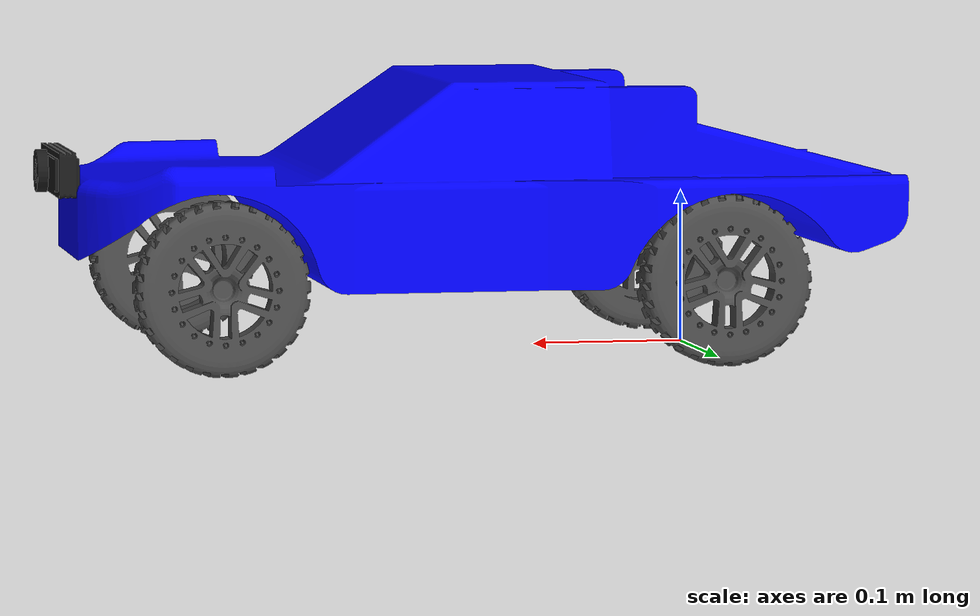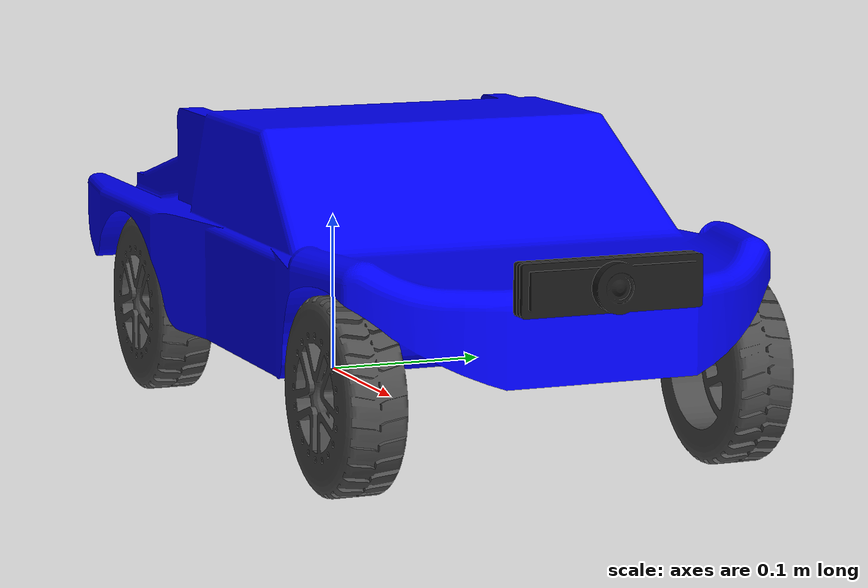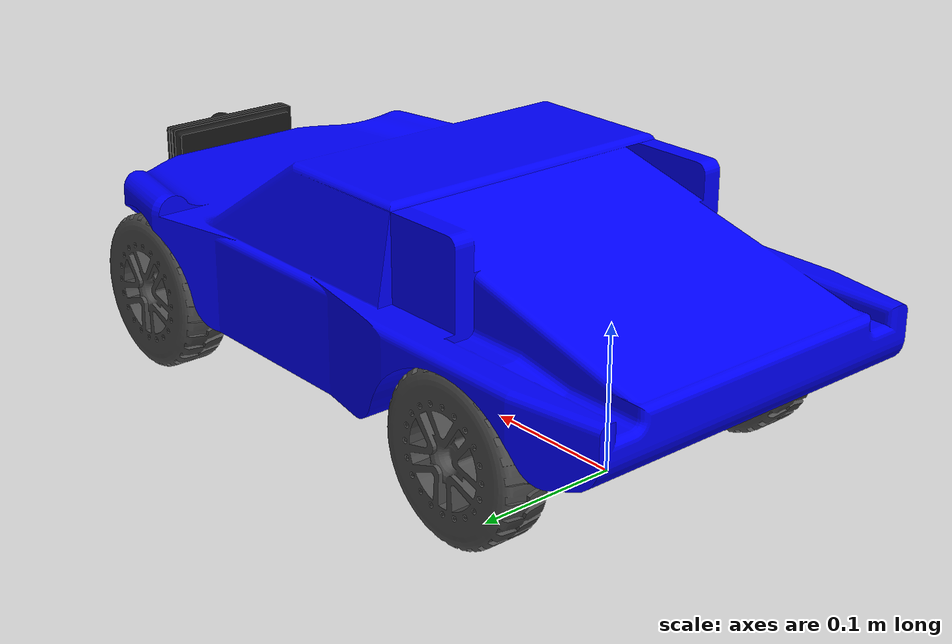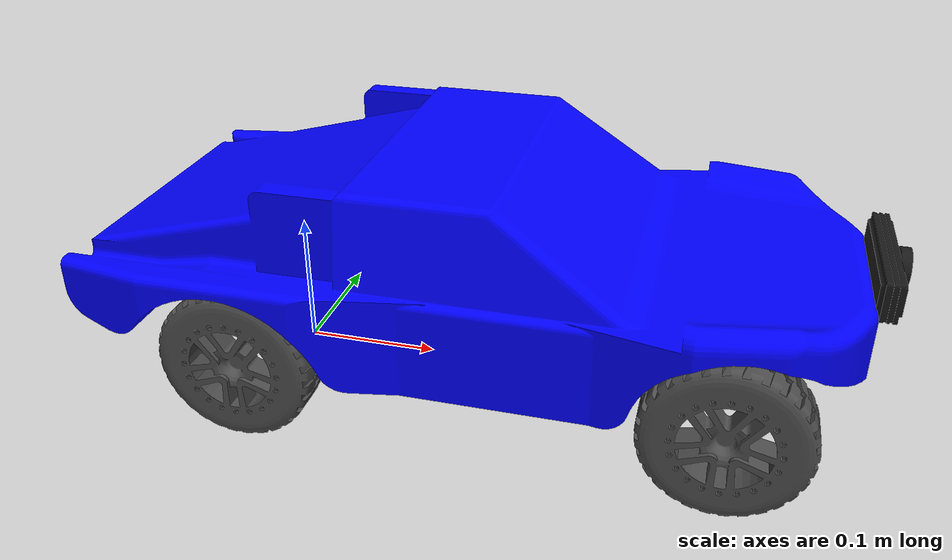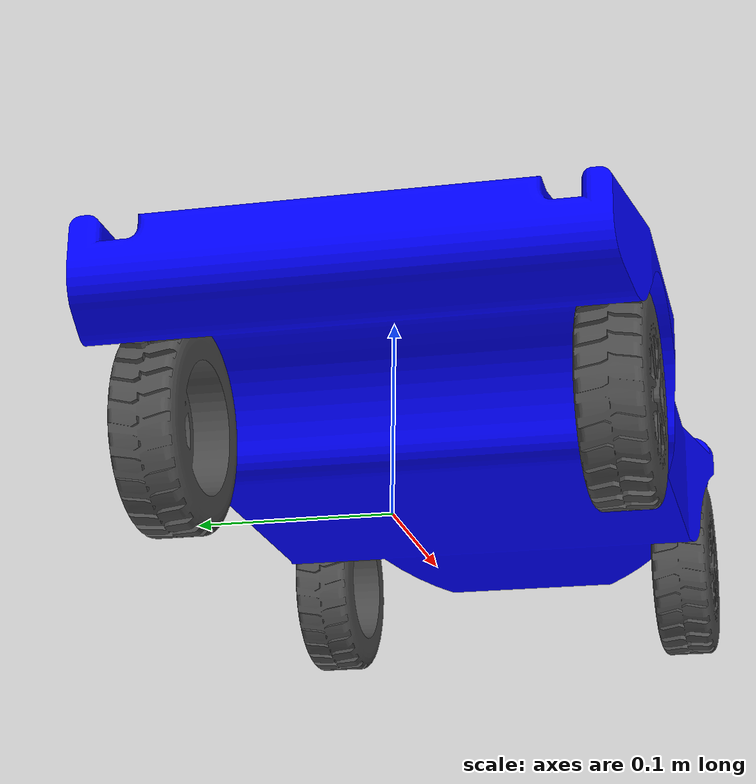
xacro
<?xml version="1.0"?>
<robot name="mobile" xmlns:xacro="http://ros.org/wiki/xacro">
	<material name="blue">
		<color rgba="0 0 1.0 1.0"/>
	</material>
	<material name="black">
		<color rgba="0.1 0.1 0.1 1.0"/>
	</material>
	<material name="gray">
		<color rgba="0.3 0.3 0.3 1.0"/>
	</material>

	<xacro:macro name="wheel">
		<geometry>
			<mesh filename="package://mobile/car_parts/rviz/wheel.stl" scale="0.001 0.001 0.001"/>
		</geometry>
	</xacro:macro>

	<link name="base_link">
		<visual>
			<origin rpy="0 0 -1.5708" xyz="0.145 0.1375 0.048"/>
			<geometry>
				<mesh filename="package://mobile/car_parts/rviz/car-body.stl" scale="0.001 0.001 0.001"/>
			</geometry>
			<material name="blue"/>
		</visual>
		<collision>
			<origin rpy="0 0 -1.5708" xyz="0.145 0.1375 0.048"/>
			<geometry>
				<mesh filename="package://mobile/car_parts/rviz/car-body.stl" scale="0.001 0.001 0.001"/>
			</geometry>
		</collision>
	</link>

	<joint name="base_to_laser" type="fixed">
		<origin xyz="0.123 0 0"/>
		<parent link="base_link"/>
		<child link="laser"/>
	</joint>
	<link name="laser">
	</link>

	<joint name="base_to_camera" type="fixed">
		<origin xyz="0.41 0 0.12"/>
		<parent link="base_link"/>
		<child link="camera"/>
	</joint>
	<link name="camera">
		<visual>
			<origin rpy="1.5708 0 1.5708"/>
			<geometry>
				<mesh filename="package://mobile/car_parts/rviz/cam-f100.stl" scale="0.001 0.001 0.001"/>
			</geometry>
			<material name="black"/>
		</visual>
		<collision>
			<origin rpy="1.5708 0 1.5708"/>
			<geometry>
				<mesh filename="package://mobile/car_parts/rviz/cam-f100.stl" scale="0.001 0.001 0.001"/>
			</geometry>
		</collision>
	</link>

	<joint name="base_to_imu" type="fixed">
		<origin rpy="0 0 0" xyz="0.307 0 0.12"/>
		<parent link="base_link"/>
		<child link="imu_link"/>
	</joint>
	<link name="imu_link">
	</link>

	<joint name="front_steer_joint" type="revolute">
		<limit effort="100" lower="-1" upper="1" velocity="10"/>
		<axis xyz="0 0 -1"/>
		<origin xyz="0.326 0 0.052"/>
		<parent link="base_link"/>
		<child link="front_steer"/>
	</joint>
	<link name="front_steer">
	</link>

	<joint name="front_left_wheel_revolute_joint" type="revolute">
		<limit effort="100" lower="-1" upper="1" velocity="10"/>
		<axis xyz="0 0 1"/>
		<origin rpy="0 0 0" xyz="0.326 0.115 0.052"/>
		<mimic joint="front_steer_joint" multiplier="1.0"/>
		<parent link="base_link"/>
		<child link="front_left_wheel_revolute"/>
	</joint>
	<link name="front_left_wheel_revolute">
	</link>

	<joint name="base_to_top_left_wheel" type="continuous">
		<origin rpy="0 0 0"/>
		<axis xyz="0 1 0"/>
		<mimic joint="base_to_bottom_left_wheel" multiplier="1.0"/>
		<parent link="front_left_wheel_revolute"/>
		<child link="top_left_wheel"/>
	</joint>
	<link name="top_left_wheel">
		<visual>
			<origin rpy="-1.5708 0 0"/>
			<xacro:wheel/>
			<material name="gray"/>
		</visual>
		<collision>
			<origin rpy="-1.5708 0 0"/>
			<xacro:wheel/>
		</collision>
	</link>

	<joint name="front_right_wheel_revolute_joint" type="revolute">
		<limit effort="100" lower="-1" upper="1" velocity="10"/>
		<axis xyz="0 0 1"/>
		<origin rpy="0 0 0" xyz="0.326 -0.115 0.052"/>
		<mimic joint="front_steer_joint" multiplier="1.0"/>
		<parent link="base_link"/>
		<child link="front_right_wheel_revolute"/>
	</joint>
	<link name="front_right_wheel_revolute">
	</link>

	<joint name="base_to_top_right_wheel" type="continuous">
		<origin rpy="0 0 0"/>
		<axis xyz="0 1 0"/>
		<mimic joint="base_to_bottom_right_wheel" multiplier="1.0"/>
		<parent link="front_right_wheel_revolute"/>
		<child link="top_right_wheel"/>
	</joint>
	<link name="top_right_wheel">
		<visual>
			<origin rpy="1.5708 3.14 0"/>
			<xacro:wheel/>
			<material name="gray"/>
		</visual>
		<collision>
			<origin rpy="1.5708 3.14 0"/>
			<xacro:wheel/>
		</collision>
	</link>

	<joint name="rear_wheel_joint" type="continuous">
		<axis xyz="0 1 0"/>
		<origin rpy="0 0 0" xyz="0 0 0.052"/>
		<parent link="base_link"/>
		<child link="rear_steer"/>
	</joint>
	<link name="rear_steer">
	</link>

	<joint name="base_to_bottom_left_wheel" type="continuous">
		<axis xyz="0 0 1"/>
		<origin rpy="-1.5708 0 0" xyz="0 0.115 0.052"/>
		<mimic joint="rear_wheel_joint" multiplier="1.0"/>
		<parent link="base_link"/>
		<child link="bottom_left_wheel"/>
	</joint>
	<link name="bottom_left_wheel">
		<visual>
			<xacro:wheel/>
			<material name="gray"/>
		</visual>
		<collision>
			<xacro:wheel/>
		</collision>
	</link>

	<joint name="base_to_bottom_right_wheel" type="continuous">
		<axis xyz="0 0 -1"/>
		<origin rpy="1.5708 3.14 0" xyz="0 -0.115 0.052"/>
		<mimic joint="rear_wheel_joint" multiplier="1.0"/>
		<parent link="base_link"/>
		<child link="bottom_right_wheel"/>
	</joint>
	<link name="bottom_right_wheel">
		<visual>
			<xacro:wheel/>
			<material name="gray"/>
		</visual>
		<collision>
			<xacro:wheel/>
		</collision>
	</link>
</robot>
